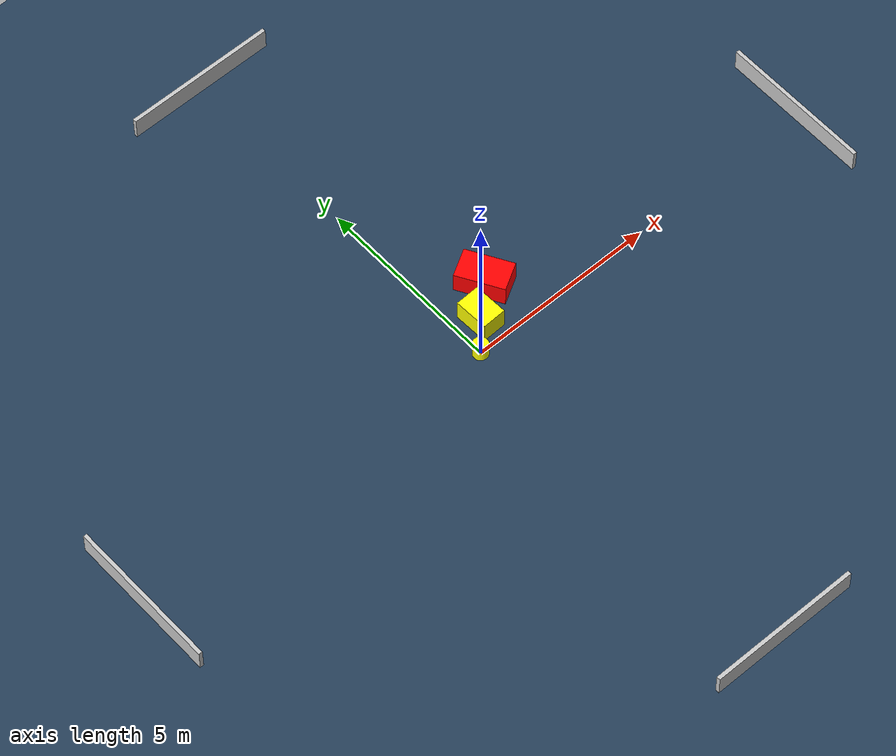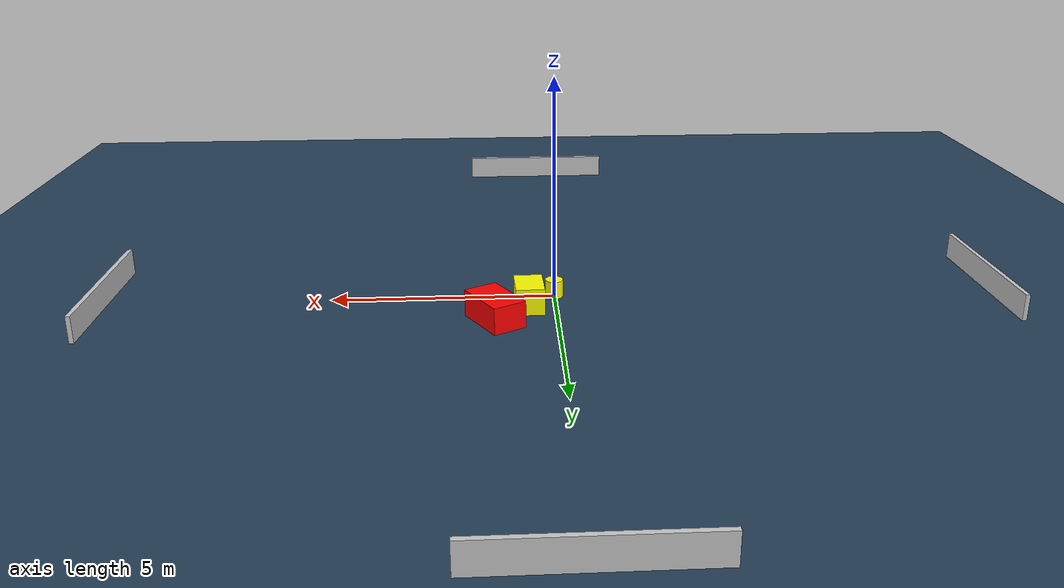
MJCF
<?xml version="1.0" ?>
<mujoco model="generated_environment">
  <option timestep="0.01" integrator="RK4" cone="elliptic"/>
  <default>
    <geom density="1"/>
  </default>
  <asset>
    <texture builtin="gradient" height="3072" name="skybox" rgb1="0.3 0.5 0.7" rgb2="0 0 0" type="skybox" width="512"/>
    <texture builtin="checker" height="300" name="groundplane" rgb1="0.2 0.3 0.4" rgb2="0.1 0.2 0.3" type="2d" width="300"/>
    <material name="groundplane" reflectance="0.2" texrepeat="5 5" texture="groundplane"/>
  </asset>
  <worldbody>
    <light dir="0 0 -1" directional="true" pos="0 0 1.5"/>
    <geom condim="3" friction="0.5 0.005 0.001" material="groundplane" name="floor" pos="0 0 0" size="0 0 0.05" type="plane"/>
    <body name="walls">
      <geom name="wall_1" condim="4" pos="-10.0 0.0 0.3" rgba="0.800000011920929 0.800000011920929 0.800000011920929 1.0" size="0.05 2.0 0.3" type="box"/>
      <geom name="wall_2" condim="4" pos="10.0 0.0 0.3" rgba="0.800000011920929 0.800000011920929 0.800000011920929 1.0" size="0.05 2.0 0.3" type="box"/>
      <geom name="wall_3" condim="4" pos="0.0 -10.0 0.3" rgba="0.800000011920929 0.800000011920929 0.800000011920929 1.0" size="2.0 0.05 0.3" type="box"/>
      <geom name="wall_4" condim="4" pos="0.0 10.0 0.3" rgba="0.800000011920929 0.800000011920929 0.800000011920929 1.0" size="2.0 0.05 0.3" type="box"/>
    </body>
    <body name="robot">
      <joint name="joint_x" type="slide" pos="0 0 0" axis="1 0 0"/>
      <joint name="joint_y" type="slide" pos="0 0 0" axis="0 1 0"/>
      <geom name="robot" type="cylinder" pos="0.0 0.0 0.2" size="0.2 0.2 0.0" mass="5.0" friction="1.0 0.005 0.0001" condim="4" rgba="1.0 1.0 0.0 1.0"/>
    </body>
    <body name="obstacle_1_movable">
      <geom name="obstacle_1_movable" condim="4" pos="0.5906409506306548 0.6543668016952071 0.3" euler="0 0 2.080024002816212" friction="0.0 0.005 0.001" rgba="1.0 1.0 0.0 1.0" size="0.31709497399252506 0.4497852405314822 0.3" type="box" mass="0.1"/>
      <joint type="free"/>
    </body>
    <body name="obstacle_2_static">
      <geom name="obstacle_2_static" condim="4" pos="1.3462327294910548 1.367686923326964 0.3" euler="0 0 299.87941814496486" friction="0.0 0.005 0.001" rgba="1.0 0.0 0.0 1.0" size="0.6356908806804009 0.38642895657434967 0.3" type="box"/>
    </body>
  </worldbody>
  <actuator>
    <motor name="actuator_x" joint="joint_x" gear="1" ctrlrange="-1 1"/>
    <motor name="actuator_y" joint="joint_y" gear="1" ctrlrange="-1 1"/>
  </actuator>
</mujoco>
